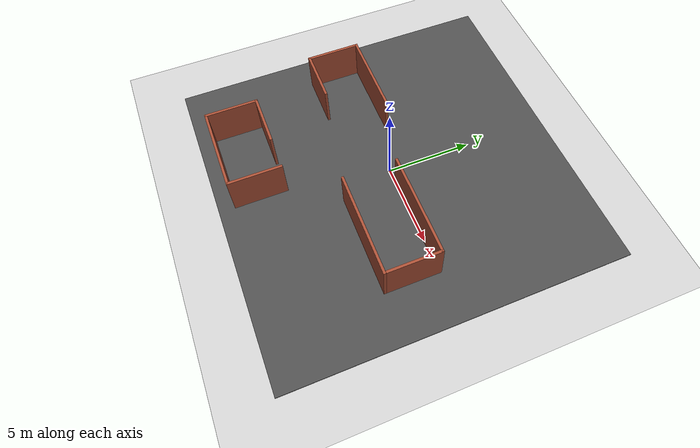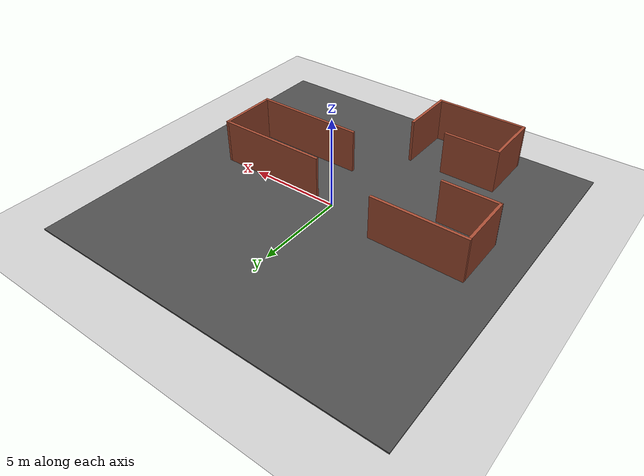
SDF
<sdf version="1.4">
 <world name="default">
  <scene><shadows>0</shadows></scene>
  <physics type="ode">
   <gravity>0 0 -9.81</gravity>
   <ode>
    <solver><type>quick</type><iters>20</iters><sor>1.0</sor></solver>
    <constraints>
     <cfm>0.0</cfm>
     <erp>0.2</erp>
     <contact_max_correcting_vel>100.0</contact_max_correcting_vel>
     <contact_surface_layer>0.0</contact_surface_layer>
    </constraints>
   </ode>
   <real_time_update_rate>1000</real_time_update_rate>
   <max_step_size>0.001</max_step_size>
  </physics>
  <include><uri>model://sun</uri></include>
  <include><uri>model://ground_plane</uri></include>
  <include><uri>model://floor</uri><name>floor</name></include>
  <include><uri>model://w1</uri><name>w1</name><pose>-0.5 -4 0 0 0 0</pose></include>
  <light type="point" name="point">
   <pose>-2.2 -2.2 2 0 0 0</pose>
   <diffuse>127 127 127 255</diffuse>
   <specular>25 25 25 255</specular>
   <attenuation>
    <range>20</range>
    <linear>0.01</linear>
    <constant>0.5</constant>
    <quadratic>0.00</quadratic>
   </attenuation>
   <cast_shadows>false</cast_shadows>
  </light>
 </world>
</sdf>

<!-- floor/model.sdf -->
<sdf version="1.5">
  <model name="asphalt_plane">
    <static>true</static>
    <link name="link">
      <collision name="collision">
        <geometry>
          <box>
            <size>20 20 .1</size>
          </box>
        </geometry>
      </collision>
      <visual name="visual">
        <cast_shadows>false</cast_shadows>
        <geometry>
          <box>
            <size>20 20 .1</size>
          </box>
        </geometry>
        <material>
          <script>
            <uri>model://floor/materials/scripts</uri>
            <uri>model://floor/materials/textures</uri>
            <name>vrc/asphalt</name>
          </script>
        </material>
      </visual>
    </link>
  </model>
</sdf>

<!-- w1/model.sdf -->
<sdf version="1.5">
  <model name="grey_wall">
    <static>true</static>
   <link name='Wall_11'>
        <collision name='Wall_11_Collision'>
          <geometry>
            <box>
              <size>3.15 0.15 2.5</size>
            </box>
          </geometry>
          <pose>0 0 1.25 0 -0 0</pose>
          <max_contacts>10</max_contacts>
          <surface>
            <contact>
              <ode/>
            </contact>
            <bounce/>
            <friction>
              <torsional>
                <ode/>
              </torsional>
              <ode/>
            </friction>
          </surface>
        </collision>
        <visual name='Wall_11_Visual'>
          <pose>0 0 1.25 0 -0 0</pose>
          <geometry>
            <box>
              <size>3.15 0.15 2.5</size>
            </box>
          </geometry>
          <material>
            <script>
              <uri>file://media/materials/scripts/gazebo.material</uri>
              <name>Gazebo/Bricks</name>
            </script>
            <ambient>1 1 1 1</ambient>
          </material>
          <meta>
            <layer>0</layer>
          </meta>
        </visual>
        <pose>-0.5 -3.5 0 0 -0 1.5708</pose>
        <self_collide>0</self_collide>
        <enable_wind>0</enable_wind>
        <kinematic>0</kinematic>
      </link>
      <link name='Wall_13'>
        <collision name='Wall_13_Collision'>
          <geometry>
            <box>
              <size>5.15 0.15 2.5</size>
            </box>
          </geometry>
          <pose>0 0 1.25 0 -0 0</pose>
          <max_contacts>10</max_contacts>
          <surface>
            <contact>
              <ode/>
            </contact>
            <bounce/>
            <friction>
              <torsional>
                <ode/>
              </torsional>
              <ode/>
            </friction>
          </surface>
        </collision>
        <visual name='Wall_13_Visual'>
          <pose>0 0 1.25 0 -0 0</pose>
          <geometry>
            <box>
              <size>5.15 0.15 2.5</size>
            </box>
          </geometry>
          <material>
            <script>
              <uri>file://media/materials/scripts/gazebo.material</uri>
              <name>Gazebo/Bricks</name>
            </script>
            <ambient>1 1 1 1</ambient>
          </material>
          <meta>
            <layer>0</layer>
          </meta>
        </visual>
        <pose>-5 5 0 0 -0 3.14159</pose>
        <self_collide>0</self_collide>
        <enable_wind>0</enable_wind>
        <kinematic>0</kinematic>
      </link>
      <link name='Wall_15'>
        <collision name='Wall_15_Collision'>
          <geometry>
            <box>
              <size>3.15 0.15 2.5</size>
            </box>
          </geometry>
          <pose>0 0 1.25 0 -0 0</pose>
          <max_contacts>10</max_contacts>
          <surface>
            <contact>
              <ode/>
            </contact>
            <bounce/>
            <friction>
              <torsional>
                <ode/>
              </torsional>
              <ode/>
            </friction>
          </surface>
        </collision>
        <visual name='Wall_15_Visual'>
          <pose>0 0 1.25 0 -0 0</pose>
          <geometry>
            <box>
              <size>3.15 0.15 2.5</size>
            </box>
          </geometry>
          <material>
            <script>
              <uri>file://media/materials/scripts/gazebo.material</uri>
              <name>Gazebo/Bricks</name>
            </script>
            <ambient>1 1 1 1</ambient>
          </material>
          <meta>
            <layer>0</layer>
          </meta>
        </visual>
        <pose>-7.5 3.5 0 0 -0 -1.5708</pose>
        <self_collide>0</self_collide>
        <enable_wind>0</enable_wind>
        <kinematic>0</kinematic>
      </link>
      <link name='Wall_29'>
        <collision name='Wall_29_Collision'>
          <geometry>
            <box>
              <size>3.15 0.15 2.5</size>
            </box>
          </geometry>
          <pose>0 0 1.25 0 -0 0</pose>
          <max_contacts>10</max_contacts>
          <surface>
            <contact>
              <ode/>
            </contact>
            <bounce/>
            <friction>
              <torsional>
                <ode/>
              </torsional>
              <ode/>
            </friction>
          </surface>
        </collision>
        <visual name='Wall_29_Visual'>
          <pose>0 0 1.25 0 -0 0</pose>
          <geometry>
            <box>
              <size>3.15 0.15 2.5</size>
            </box>
          </geometry>
          <material>
            <script>
              <uri>file://media/materials/scripts/gazebo.material</uri>
              <name>Gazebo/Bricks</name>
            </script>
            <ambient>1 1 1 1</ambient>
          </material>
          <meta>
            <layer>0</layer>
          </meta>
        </visual>
        <pose>-6 1.95 0 0 -0 3.14159</pose>
        <self_collide>0</self_collide>
        <enable_wind>0</enable_wind>
        <kinematic>0</kinematic>
      </link>
      <link name='Wall_31'>
        <collision name='Wall_31_Collision'>
          <geometry>
            <box>
              <size>3.15 0.15 2.5</size>
            </box>
          </geometry>
          <pose>0 0 1.25 0 -0 0</pose>
          <max_contacts>10</max_contacts>
          <surface>
            <contact>
              <ode/>
            </contact>
            <bounce/>
            <friction>
              <torsional>
                <ode/>
              </torsional>
              <ode/>
            </friction>
          </surface>
        </collision>
        <visual name='Wall_31_Visual'>
          <pose>0 0 1.25 0 -0 0</pose>
          <geometry>
            <box>
              <size>3.15 0.15 2.5</size>
            </box>
          </geometry>
          <material>
            <script>
              <uri>file://media/materials/scripts/gazebo.material</uri>
              <name>Gazebo/Bricks</name>
            </script>
            <ambient>1 1 1 1</ambient>
          </material>
          <meta>
            <layer>0</layer>
          </meta>
        </visual>
        <pose>7.5 2.5 0 0 -0 -1.5708</pose>
        <self_collide>0</self_collide>
        <enable_wind>0</enable_wind>
        <kinematic>0</kinematic>
      </link>
      <link name='Wall_33'>
        <collision name='Wall_33_Collision'>
          <geometry>
            <box>
              <size>6.15 0.15 2.5</size>
            </box>
          </geometry>
          <pose>0 0 1.25 0 -0 0</pose>
          <max_contacts>10</max_contacts>
          <surface>
            <contact>
              <ode/>
            </contact>
            <bounce/>
            <friction>
              <torsional>
                <ode/>
              </torsional>
              <ode/>
            </friction>
          </surface>
        </collision>
        <visual name='Wall_33_Visual'>
          <pose>0 0 1.25 0 -0 0</pose>
          <geometry>
            <box>
              <size>6.15 0.15 2.5</size>
            </box>
          </geometry>
          <material>
            <script>
              <uri>file://media/materials/scripts/gazebo.material</uri>
              <name>Gazebo/Bricks</name>
            </script>
            <ambient>1 1 1 1</ambient>
          </material>
          <meta>
            <layer>0</layer>
          </meta>
        </visual>
        <pose>4.5 0.844 0 0 -0 0</pose>
        <self_collide>0</self_collide>
        <enable_wind>0</enable_wind>
        <kinematic>0</kinematic>
      </link>
      <link name='Wall_35'>
        <collision name='Wall_35_Collision'>
          <geometry>
            <box>
              <size>6.15 0.15 2.5</size>
            </box>
          </geometry>
          <pose>0 0 1.25 0 -0 0</pose>
          <max_contacts>10</max_contacts>
          <surface>
            <contact>
              <ode/>
            </contact>
            <bounce/>
            <friction>
              <torsional>
                <ode/>
              </torsional>
              <ode/>
            </friction>
          </surface>
        </collision>
        <visual name='Wall_35_Visual'>
          <pose>0 0 1.25 0 -0 0</pose>
          <geometry>
            <box>
              <size>6.15 0.15 2.5</size>
            </box>
          </geometry>
          <material>
            <script>
              <uri>file://media/materials/scripts/gazebo.material</uri>
              <name>Gazebo/Bricks</name>
            </script>
            <ambient>1 1 1 1</ambient>
          </material>
          <meta>
            <layer>0</layer>
          </meta>
        </visual>
        <pose>4.5 4 0 0 -0 3.14159</pose>
        <self_collide>0</self_collide>
        <enable_wind>0</enable_wind>
        <kinematic>0</kinematic>
      </link>
      <link name='Wall_5'>
        <collision name='Wall_5_Collision'>
          <geometry>
            <box>
              <size>5.15 0.15 2.5</size>
            </box>
          </geometry>
          <pose>0 0 1.25 0 -0 0</pose>
          <max_contacts>10</max_contacts>
          <surface>
            <contact>
              <ode/>
            </contact>
            <bounce/>
            <friction>
              <torsional>
                <ode/>
              </torsional>
              <ode/>
            </friction>
          </surface>
        </collision>
        <visual name='Wall_5_Visual'>
          <pose>0 0 1.25 0 -0 0</pose>
          <geometry>
            <box>
              <size>5.15 0.15 2.5</size>
            </box>
          </geometry>
          <material>
            <script>
              <uri>file://media/materials/scripts/gazebo.material</uri>
              <name>Gazebo/Bricks</name>
            </script>
            <ambient>1 1 1 1</ambient>
          </material>
          <meta>
            <layer>0</layer>
          </meta>
        </visual>
        <pose>-3 -5 0 0 -0 3.14159</pose>
        <self_collide>0</self_collide>
        <enable_wind>0</enable_wind>
        <kinematic>0</kinematic>
      </link>
      <link name='Wall_7'>
        <collision name='Wall_7_Collision'>
          <geometry>
            <box>
              <size>3.15 0.15 2.5</size>
            </box>
          </geometry>
          <pose>0 0 1.25 0 -0 0</pose>
          <max_contacts>10</max_contacts>
          <surface>
            <contact>
              <ode/>
            </contact>
            <bounce/>
            <friction>
              <torsional>
                <ode/>
              </torsional>
              <ode/>
            </friction>
          </surface>
        </collision>
        <visual name='Wall_7_Visual'>
          <pose>0 0 1.25 0 -0 0</pose>
          <geometry>
            <box>
              <size>3.15 0.15 2.5</size>
            </box>
          </geometry>
          <material>
            <script>
              <uri>file://media/materials/scripts/gazebo.material</uri>
              <name>Gazebo/Bricks</name>
            </script>
            <ambient>1 1 1 1</ambient>
          </material>
          <meta>
            <layer>0</layer>
          </meta>
        </visual>
        <pose>-5.5 -3.5 0 0 -0 1.5708</pose>
        <self_collide>0</self_collide>
        <enable_wind>0</enable_wind>
        <kinematic>0</kinematic>
      </link>
      <link name='Wall_9'>
        <collision name='Wall_9_Collision'>
          <geometry>
            <box>
              <size>3.15 0.15 2.5</size>
            </box>
          </geometry>
          <pose>0 0 1.25 0 -0 0</pose>
          <max_contacts>10</max_contacts>
          <surface>
            <contact>
              <ode/>
            </contact>
            <bounce/>
            <friction>
              <torsional>
                <ode/>
              </torsional>
              <ode/>
            </friction>
          </surface>
        </collision>
        <visual name='Wall_9_Visual'>
          <pose>0 0 1.25 0 -0 0</pose>
          <geometry>
            <box>
              <size>3.15 0.15 2.5</size>
            </box>
          </geometry>
          <material>
            <script>
              <uri>file://media/materials/scripts/gazebo.material</uri>
              <name>Gazebo/Bricks</name>
            </script>
            <ambient>1 1 1 1</ambient>
          </material>
          <meta>
            <layer>0</layer>
          </meta>
        </visual>
        <pose>-4 -2 0 0 -0 3.14159</pose>
        <self_collide>0</self_collide>
        <enable_wind>0</enable_wind>
        <kinematic>0</kinematic>
      </link>
      <static>1</static>
    </model>

</sdf>
